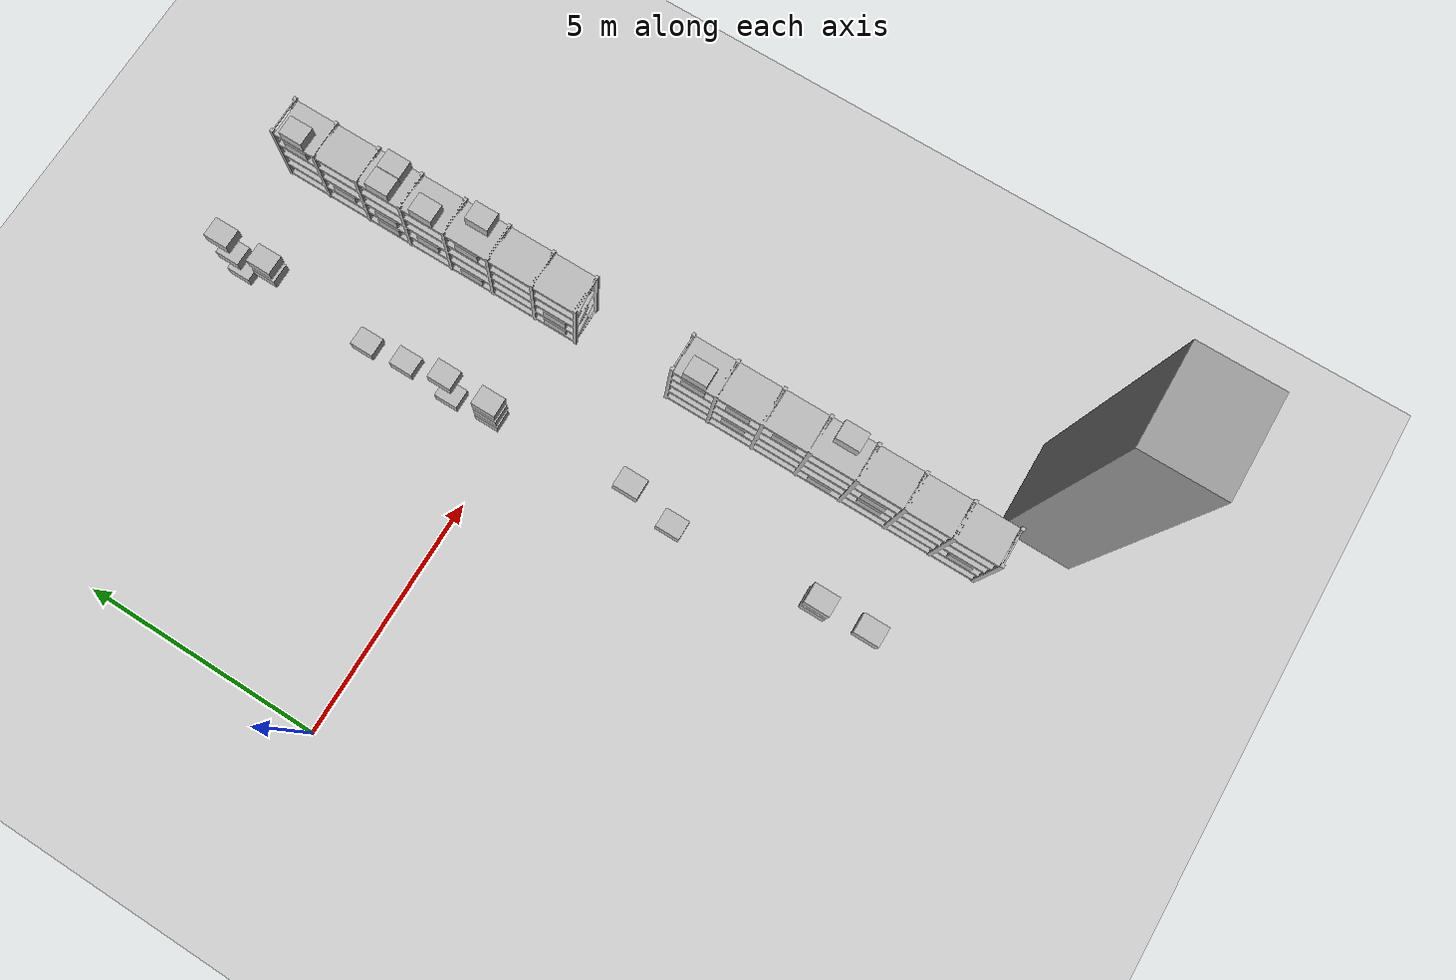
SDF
<sdf version="1.6">
 <world name="default">
  <model name="ground_plane">
   <static>1</static>
   <link name="link">
    <collision name="collision">
     <geometry><plane><normal>0 0 1</normal><size>100 100</size></plane></geometry>
     <surface><friction><ode><mu>100</mu><mu2>50</mu2></ode></friction></surface>
    </collision>
    <visual name="visual">
     <cast_shadows>0</cast_shadows>
     <geometry><plane><normal>0 0 1</normal><size>100 100</size></plane></geometry>
     <material>
      <script><uri>file://media/materials/scripts/gazebo.material</uri><name>Gazebo/Grey</name></script>
     </material>
    </visual>
   </link>
  </model>
  <model name="box_A_083">
   <pose>6.6649 -7.4906 2.052 0 0 0</pose>
   <link name="link">
    <inertial>
     <mass>2.0</mass>
     <inertia><ixx>0.05667</ixx><iyy>0.04167</iyy><izz>0.06833</izz><ixy>0</ixy><ixz>0</ixz><iyz>0</iyz></inertia>
    </inertial>
    <collision name="collision">
     <geometry><box><size>0.4 0.5 0.3</size></box></geometry>
     <surface><friction><ode><mu>1.0</mu><mu2>1.0</mu2></ode></friction></surface>
    </collision>
    <visual name="visual">
     <cast_shadows>0</cast_shadows>
     <geometry><box><size>0.4 0.5 0.3</size></box></geometry>
     <material>
      <script>
       <uri>model://labeled_boxes/materials/scripts</uri>
       <uri>model://labeled_boxes/materials/textures</uri>
       <name>LabeledBox/A-083</name>
      </script>
     </material>
    </visual>
   </link>
  </model>
  <model name="box_A_084">
   <pose>6.6649 -6.5191 1.602 0 0 0</pose>
   <link name="link">
    <inertial>
     <mass>2.0</mass>
     <inertia><ixx>0.05667</ixx><iyy>0.04167</iyy><izz>0.06833</izz><ixy>0</ixy><ixz>0</ixz><iyz>0</iyz></inertia>
    </inertial>
    <collision name="collision">
     <geometry><box><size>0.4 0.5 0.3</size></box></geometry>
     <surface><friction><ode><mu>1.0</mu><mu2>1.0</mu2></ode></friction></surface>
    </collision>
    <visual name="visual">
     <cast_shadows>0</cast_shadows>
     <geometry><box><size>0.4 0.5 0.3</size></box></geometry>
     <material>
      <script>
       <uri>model://labeled_boxes/materials/scripts</uri>
       <uri>model://labeled_boxes/materials/textures</uri>
       <name>LabeledBox/A-084</name>
      </script>
     </material>
    </visual>
   </link>
  </model>
  <model name="box_A_085">
   <pose>6.6649 -6.5191 2.052 0 0 0</pose>
   <link name="link">
    <inertial>
     <mass>2.0</mass>
     <inertia><ixx>0.05667</ixx><iyy>0.04167</iyy><izz>0.06833</izz><ixy>0</ixy><ixz>0</ixz><iyz>0</iyz></inertia>
    </inertial>
    <collision name="collision">
     <geometry><box><size>0.4 0.5 0.3</size></box></geometry>
     <surface><friction><ode><mu>1.0</mu><mu2>1.0</mu2></ode></friction></surface>
    </collision>
    <visual name="visual">
     <cast_shadows>0</cast_shadows>
     <geometry><box><size>0.4 0.5 0.3</size></box></geometry>
     <material>
      <script>
       <uri>model://labeled_boxes/materials/scripts</uri>
       <uri>model://labeled_boxes/materials/textures</uri>
       <name>LabeledBox/A-085</name>
      </script>
     </material>
    </visual>
   </link>
  </model>
  <model name="box_A_087">
   <pose>6.6649 -3.6049 0.702 0 0 0</pose>
   <link name="link">
    <inertial>
     <mass>2.0</mass>
     <inertia><ixx>0.05667</ixx><iyy>0.04167</iyy><izz>0.06833</izz><ixy>0</ixy><ixz>0</ixz><iyz>0</iyz></inertia>
    </inertial>
    <collision name="collision">
     <geometry><box><size>0.4 0.5 0.3</size></box></geometry>
     <surface><friction><ode><mu>1.0</mu><mu2>1.0</mu2></ode></friction></surface>
    </collision>
    <visual name="visual">
     <cast_shadows>0</cast_shadows>
     <geometry><box><size>0.4 0.5 0.3</size></box></geometry>
     <material>
      <script>
       <uri>model://labeled_boxes/materials/scripts</uri>
       <uri>model://labeled_boxes/materials/textures</uri>
       <name>LabeledBox/A-087</name>
      </script>
     </material>
    </visual>
   </link>
  </model>
  <model name="box_A_088">
   <pose>6.6649 -2.6509 2.052 0 0 0</pose>
   <link name="link">
    <inertial>
     <mass>2.0</mass>
     <inertia><ixx>0.05667</ixx><iyy>0.04167</iyy><izz>0.06833</izz><ixy>0</ixy><ixz>0</ixz><iyz>0</iyz></inertia>
    </inertial>
    <collision name="collision">
     <geometry><box><size>0.4 0.5 0.3</size></box></geometry>
     <surface><friction><ode><mu>1.0</mu><mu2>1.0</mu2></ode></friction></surface>
    </collision>
    <visual name="visual">
     <cast_shadows>0</cast_shadows>
     <geometry><box><size>0.4 0.5 0.3</size></box></geometry>
     <material>
      <script>
       <uri>model://labeled_boxes/materials/scripts</uri>
       <uri>model://labeled_boxes/materials/textures</uri>
       <name>LabeledBox/A-088</name>
      </script>
     </material>
    </visual>
   </link>
  </model>
  <model name="box_A_089">
   <pose>6.6649 0.3555 0.702 0 0 0</pose>
   <link name="link">
    <inertial>
     <mass>2.0</mass>
     <inertia><ixx>0.05667</ixx><iyy>0.04167</iyy><izz>0.06833</izz><ixy>0</ixy><ixz>0</ixz><iyz>0</iyz></inertia>
    </inertial>
    <collision name="collision">
     <geometry><box><size>0.4 0.5 0.3</size></box></geometry>
     <surface><friction><ode><mu>1.0</mu><mu2>1.0</mu2></ode></friction></surface>
    </collision>
    <visual name="visual">
     <cast_shadows>0</cast_shadows>
     <geometry><box><size>0.4 0.5 0.3</size></box></geometry>
     <material>
      <script>
       <uri>model://labeled_boxes/materials/scripts</uri>
       <uri>model://labeled_boxes/materials/textures</uri>
       <name>LabeledBox/A-089</name>
      </script>
     </material>
    </visual>
   </link>
  </model>
  <model name="box_A_091">
   <pose>6.6649 0.3555 1.152 0 0 0</pose>
   <link name="link">
    <inertial>
     <mass>2.0</mass>
     <inertia><ixx>0.05667</ixx><iyy>0.04167</iyy><izz>0.06833</izz><ixy>0</ixy><ixz>0</ixz><iyz>0</iyz></inertia>
    </inertial>
    <collision name="collision">
     <geometry><box><size>0.4 0.5 0.3</size></box></geometry>
     <surface><friction><ode><mu>1.0</mu><mu2>1.0</mu2></ode></friction></surface>
    </collision>
    <visual name="visual">
     <cast_shadows>0</cast_shadows>
     <geometry><box><size>0.4 0.5 0.3</size></box></geometry>
     <material>
      <script>
       <uri>model://labeled_boxes/materials/scripts</uri>
       <uri>model://labeled_boxes/materials/textures</uri>
       <name>LabeledBox/A-091</name>
      </script>
     </material>
    </visual>
   </link>
  </model>
  <model name="box_A_092">
   <pose>6.6649 0.3555 1.602 0 0 0</pose>
   <link name="link">
    <inertial>
     <mass>2.0</mass>
     <inertia><ixx>0.05667</ixx><iyy>0.04167</iyy><izz>0.06833</izz><ixy>0</ixy><ixz>0</ixz><iyz>0</iyz></inertia>
    </inertial>
    <collision name="collision">
     <geometry><box><size>0.4 0.5 0.3</size></box></geometry>
     <surface><friction><ode><mu>1.0</mu><mu2>1.0</mu2></ode></friction></surface>
    </collision>
    <visual name="visual">
     <cast_shadows>0</cast_shadows>
     <geometry><box><size>0.4 0.5 0.3</size></box></geometry>
     <material>
      <script>
       <uri>model://labeled_boxes/materials/scripts</uri>
       <uri>model://labeled_boxes/materials/textures</uri>
       <name>LabeledBox/A-092</name>
      </script>
     </material>
    </visual>
   </link>
  </model>
  <model name="box_A_093">
   <pose>6.6649 1.3094 0.252 0 0 0</pose>
   <link name="link">
    <inertial>
     <mass>2.0</mass>
     <inertia><ixx>0.05667</ixx><iyy>0.04167</iyy><izz>0.06833</izz><ixy>0</ixy><ixz>0</ixz><iyz>0</iyz></inertia>
    </inertial>
    <collision name="collision">
     <geometry><box><size>0.4 0.5 0.3</size></box></geometry>
     <surface><friction><ode><mu>1.0</mu><mu2>1.0</mu2></ode></friction></surface>
    </collision>
    <visual name="visual">
     <cast_shadows>0</cast_shadows>
     <geometry><box><size>0.4 0.5 0.3</size></box></geometry>
     <material>
      <script>
       <uri>model://labeled_boxes/materials/scripts</uri>
       <uri>model://labeled_boxes/materials/textures</uri>
       <name>LabeledBox/A-093</name>
      </script>
     </material>
    </visual>
   </link>
  </model>
  <model name="box_A_095">
   <pose>6.6649 1.3094 1.602 0 0 0</pose>
   <link name="link">
    <inertial>
     <mass>2.0</mass>
     <inertia><ixx>0.05667</ixx><iyy>0.04167</iyy><izz>0.06833</izz><ixy>0</ixy><ixz>0</ixz><iyz>0</iyz></inertia>
    </inertial>
    <collision name="collision">
     <geometry><box><size>0.4 0.5 0.3</size></box></geometry>
     <surface><friction><ode><mu>1.0</mu><mu2>1.0</mu2></ode></friction></surface>
    </collision>
    <visual name="visual">
     <cast_shadows>0</cast_shadows>
     <geometry><box><size>0.4 0.5 0.3</size></box></geometry>
     <material>
      <script>
       <uri>model://labeled_boxes/materials/scripts</uri>
       <uri>model://labeled_boxes/materials/textures</uri>
       <name>LabeledBox/A-095</name>
      </script>
     </material>
    </visual>
   </link>
  </model>
  <model name="box_A_096">
   <pose>6.6649 2.2809 0.702 0 0 0</pose>
   <link name="link">
    <inertial>
     <mass>2.0</mass>
     <inertia><ixx>0.05667</ixx><iyy>0.04167</iyy><izz>0.06833</izz><ixy>0</ixy><ixz>0</ixz><iyz>0</iyz></inertia>
    </inertial>
    <collision name="collision">
     <geometry><box><size>0.4 0.5 0.3</size></box></geometry>
     <surface><friction><ode><mu>1.0</mu><mu2>1.0</mu2></ode></friction></surface>
    </collision>
    <visual name="visual">
     <cast_shadows>0</cast_shadows>
     <geometry><box><size>0.4 0.5 0.3</size></box></geometry>
     <material>
      <script>
       <uri>model://labeled_boxes/materials/scripts</uri>
       <uri>model://labeled_boxes/materials/textures</uri>
       <name>LabeledBox/A-096</name>
      </script>
     </material>
    </visual>
   </link>
  </model>
  <model name="box_A_098">
   <pose>6.6649 3.2523 0.252 0 0 0</pose>
   <link name="link">
    <inertial>
     <mass>2.0</mass>
     <inertia><ixx>0.05667</ixx><iyy>0.04167</iyy><izz>0.06833</izz><ixy>0</ixy><ixz>0</ixz><iyz>0</iyz></inertia>
    </inertial>
    <collision name="collision">
     <geometry><box><size>0.4 0.5 0.3</size></box></geometry>
     <surface><friction><ode><mu>1.0</mu><mu2>1.0</mu2></ode></friction></surface>
    </collision>
    <visual name="visual">
     <cast_shadows>0</cast_shadows>
     <geometry><box><size>0.4 0.5 0.3</size></box></geometry>
     <material>
      <script>
       <uri>model://labeled_boxes/materials/scripts</uri>
       <uri>model://labeled_boxes/materials/textures</uri>
       <name>LabeledBox/A-098</name>
      </script>
     </material>
    </visual>
   </link>
  </model>
  <model name="box_A_103">
   <pose>6.6649 5.1951 1.602 0 0 0</pose>
   <link name="link">
    <inertial>
     <mass>2.0</mass>
     <inertia><ixx>0.05667</ixx><iyy>0.04167</iyy><izz>0.06833</izz><ixy>0</ixy><ixz>0</ixz><iyz>0</iyz></inertia>
    </inertial>
    <collision name="collision">
     <geometry><box><size>0.4 0.5 0.3</size></box></geometry>
     <surface><friction><ode><mu>1.0</mu><mu2>1.0</mu2></ode></friction></surface>
    </collision>
    <visual name="visual">
     <cast_shadows>0</cast_shadows>
     <geometry><box><size>0.4 0.5 0.3</size></box></geometry>
     <material>
      <script>
       <uri>model://labeled_boxes/materials/scripts</uri>
       <uri>model://labeled_boxes/materials/textures</uri>
       <name>LabeledBox/A-103</name>
      </script>
     </material>
    </visual>
   </link>
  </model>
  <model name="box_A_104">
   <pose>6.6649 5.1951 2.052 0 0 0</pose>
   <link name="link">
    <inertial>
     <mass>2.0</mass>
     <inertia><ixx>0.05667</ixx><iyy>0.04167</iyy><izz>0.06833</izz><ixy>0</ixy><ixz>0</ixz><iyz>0</iyz></inertia>
    </inertial>
    <collision name="collision">
     <geometry><box><size>0.4 0.5 0.3</size></box></geometry>
     <surface><friction><ode><mu>1.0</mu><mu2>1.0</mu2></ode></friction></surface>
    </collision>
    <visual name="visual">
     <cast_shadows>0</cast_shadows>
     <geometry><box><size>0.4 0.5 0.3</size></box></geometry>
     <material>
      <script>
       <uri>model://labeled_boxes/materials/scripts</uri>
       <uri>model://labeled_boxes/materials/textures</uri>
       <name>LabeledBox/A-104</name>
      </script>
     </material>
    </visual>
   </link>
  </model>
  <model name="box_A_105">
   <pose>6.6649 6.1491 0.252 0 0 0</pose>
   <link name="link">
    <inertial>
     <mass>2.0</mass>
     <inertia><ixx>0.05667</ixx><iyy>0.04167</iyy><izz>0.06833</izz><ixy>0</ixy><ixz>0</ixz><iyz>0</iyz></inertia>
    </inertial>
    <collision name="collision">
     <geometry><box><size>0.4 0.5 0.3</size></box></geometry>
     <surface><friction><ode><mu>1.0</mu><mu2>1.0</mu2></ode></friction></surface>
    </collision>
    <visual name="visual">
     <cast_shadows>0</cast_shadows>
     <geometry><box><size>0.4 0.5 0.3</size></box></geometry>
     <material>
      <script>
       <uri>model://labeled_boxes/materials/scripts</uri>
       <uri>model://labeled_boxes/materials/textures</uri>
       <name>LabeledBox/A-105</name>
      </script>
     </material>
    </visual>
   </link>
  </model>
  <model name="box_A_108">
   <pose>6.6649 6.1491 1.152 0 0 0</pose>
   <link name="link">
    <inertial>
     <mass>2.0</mass>
     <inertia><ixx>0.05667</ixx><iyy>0.04167</iyy><izz>0.06833</izz><ixy>0</ixy><ixz>0</ixz><iyz>0</iyz></inertia>
    </inertial>
    <collision name="collision">
     <geometry><box><size>0.4 0.5 0.3</size></box></geometry>
     <surface><friction><ode><mu>1.0</mu><mu2>1.0</mu2></ode></friction></surface>
    </collision>
    <visual name="visual">
     <cast_shadows>0</cast_shadows>
     <geometry><box><size>0.4 0.5 0.3</size></box></geometry>
     <material>
      <script>
       <uri>model://labeled_boxes/materials/scripts</uri>
       <uri>model://labeled_boxes/materials/textures</uri>
       <name>LabeledBox/A-108</name>
      </script>
     </material>
    </visual>
   </link>
  </model>
  <model name="box_A_110">
   <pose>6.6649 6.1491 2.052 0 0 0</pose>
   <link name="link">
    <inertial>
     <mass>2.0</mass>
     <inertia><ixx>0.05667</ixx><iyy>0.04167</iyy><izz>0.06833</izz><ixy>0</ixy><ixz>0</ixz><iyz>0</iyz></inertia>
    </inertial>
    <collision name="collision">
     <geometry><box><size>0.4 0.5 0.3</size></box></geometry>
     <surface><friction><ode><mu>1.0</mu><mu2>1.0</mu2></ode></friction></surface>
    </collision>
    <visual name="visual">
     <cast_shadows>0</cast_shadows>
     <geometry><box><size>0.4 0.5 0.3</size></box></geometry>
     <material>
      <script>
       <uri>model://labeled_boxes/materials/scripts</uri>
       <uri>model://labeled_boxes/materials/textures</uri>
       <name>LabeledBox/A-110</name>
      </script>
     </material>
    </visual>
   </link>
  </model>
  <include>
   <name>rack_A5_0</name>
   <uri>model://warehouse_rack_5lvl_7bay</uri>
   <pose>9.2599 -5.5477 0 0 0 0</pose>
  </include>
  <model name="box_A_111">
   <pose>9.0549 -8.4445 0.702 0 0 0</pose>
   <link name="link">
    <inertial>
     <mass>2.0</mass>
     <inertia><ixx>0.05667</ixx><iyy>0.04167</iyy><izz>0.06833</izz><ixy>0</ixy><ixz>0</ixz><iyz>0</iyz></inertia>
    </inertial>
    <collision name="collision">
     <geometry><box><size>0.4 0.5 0.3</size></box></geometry>
     <surface><friction><ode><mu>1.0</mu><mu2>1.0</mu2></ode></friction></surface>
    </collision>
    <visual name="visual">
     <cast_shadows>0</cast_shadows>
     <geometry><box><size>0.4 0.5 0.3</size></box></geometry>
     <material>
      <script>
       <uri>model://labeled_boxes/materials/scripts</uri>
       <uri>model://labeled_boxes/materials/textures</uri>
       <name>LabeledBox/A-111</name>
      </script>
     </material>
    </visual>
   </link>
  </model>
  <model name="box_A_112">
   <pose>9.4649 -8.4445 0.702 0 0 0</pose>
   <link name="link">
    <inertial>
     <mass>2.0</mass>
     <inertia><ixx>0.05667</ixx><iyy>0.04167</iyy><izz>0.06833</izz><ixy>0</ixy><ixz>0</ixz><iyz>0</iyz></inertia>
    </inertial>
    <collision name="collision">
     <geometry><box><size>0.4 0.5 0.3</size></box></geometry>
     <surface><friction><ode><mu>1.0</mu><mu2>1.0</mu2></ode></friction></surface>
    </collision>
    <visual name="visual">
     <cast_shadows>0</cast_shadows>
     <geometry><box><size>0.4 0.5 0.3</size></box></geometry>
     <material>
      <script>
       <uri>model://labeled_boxes/materials/scripts</uri>
       <uri>model://labeled_boxes/materials/textures</uri>
       <name>LabeledBox/A-112</name>
      </script>
     </material>
    </visual>
   </link>
  </model>
  <model name="box_A_113">
   <pose>9.0549 -6.5191 0.702 0 0 0</pose>
   <link name="link">
    <inertial>
     <mass>2.0</mass>
     <inertia><ixx>0.05667</ixx><iyy>0.04167</iyy><izz>0.06833</izz><ixy>0</ixy><ixz>0</ixz><iyz>0</iyz></inertia>
    </inertial>
    <collision name="collision">
     <geometry><box><size>0.4 0.5 0.3</size></box></geometry>
     <surface><friction><ode><mu>1.0</mu><mu2>1.0</mu2></ode></friction></surface>
    </collision>
    <visual name="visual">
     <cast_shadows>0</cast_shadows>
     <geometry><box><size>0.4 0.5 0.3</size></box></geometry>
     <material>
      <script>
       <uri>model://labeled_boxes/materials/scripts</uri>
       <uri>model://labeled_boxes/materials/textures</uri>
       <name>LabeledBox/A-113</name>
      </script>
     </material>
    </visual>
   </link>
  </model>
  <model name="box_A_114">
   <pose>9.0549 -6.5191 1.152 0 0 0</pose>
   <link name="link">
    <inertial>
     <mass>2.0</mass>
     <inertia><ixx>0.05667</ixx><iyy>0.04167</iyy><izz>0.06833</izz><ixy>0</ixy><ixz>0</ixz><iyz>0</iyz></inertia>
    </inertial>
    <collision name="collision">
     <geometry><box><size>0.4 0.5 0.3</size></box></geometry>
     <surface><friction><ode><mu>1.0</mu><mu2>1.0</mu2></ode></friction></surface>
    </collision>
    <visual name="visual">
     <cast_shadows>0</cast_shadows>
     <geometry><box><size>0.4 0.5 0.3</size></box></geometry>
     <material>
      <script>
       <uri>model://labeled_boxes/materials/scripts</uri>
       <uri>model://labeled_boxes/materials/textures</uri>
       <name>LabeledBox/A-114</name>
      </script>
     </material>
    </visual>
   </link>
  </model>
  <model name="box_A_115">
   <pose>9.0549 -5.5477 0.252 0 0 0</pose>
   <link name="link">
    <inertial>
     <mass>2.0</mass>
     <inertia><ixx>0.05667</ixx><iyy>0.04167</iyy><izz>0.06833</izz><ixy>0</ixy><ixz>0</ixz><iyz>0</iyz></inertia>
    </inertial>
    <collision name="collision">
     <geometry><box><size>0.4 0.5 0.3</size></box></geometry>
     <surface><friction><ode><mu>1.0</mu><mu2>1.0</mu2></ode></friction></surface>
    </collision>
    <visual name="visual">
     <cast_shadows>0</cast_shadows>
     <geometry><box><size>0.4 0.5 0.3</size></box></geometry>
     <material>
      <script>
       <uri>model://labeled_boxes/materials/scripts</uri>
       <uri>model://labeled_boxes/materials/textures</uri>
       <name>LabeledBox/A-115</name>
      </script>
     </material>
    </visual>
   </link>
  </model>
  <model name="box_A_116">
   <pose>9.4649 -5.5477 2.052 0 0 0</pose>
   <link name="link">
    <inertial>
     <mass>2.0</mass>
     <inertia><ixx>0.05667</ixx><iyy>0.04167</iyy><izz>0.06833</izz><ixy>0</ixy><ixz>0</ixz><iyz>0</iyz></inertia>
    </inertial>
    <collision name="collision">
     <geometry><box><size>0.4 0.5 0.3</size></box></geometry>
     <surface><friction><ode><mu>1.0</mu><mu2>1.0</mu2></ode></friction></surface>
    </collision>
    <visual name="visual">
     <cast_shadows>0</cast_shadows>
     <geometry><box><size>0.4 0.5 0.3</size></box></geometry>
     <material>
      <script>
       <uri>model://labeled_boxes/materials/scripts</uri>
       <uri>model://labeled_boxes/materials/textures</uri>
       <name>LabeledBox/A-116</name>
      </script>
     </material>
    </visual>
   </link>
  </model>
  <model name="box_A_117">
   <pose>9.4649 -4.5763 0.252 0 0 0</pose>
   <link name="link">
    <inertial>
     <mass>2.0</mass>
     <inertia><ixx>0.05667</ixx><iyy>0.04167</iyy><izz>0.06833</izz><ixy>0</ixy><ixz>0</ixz><iyz>0</iyz></inertia>
    </inertial>
    <collision name="collision">
     <geometry><box><size>0.4 0.5 0.3</size></box></geometry>
     <surface><friction><ode><mu>1.0</mu><mu2>1.0</mu2></ode></friction></surface>
    </collision>
    <visual name="visual">
     <cast_shadows>0</cast_shadows>
     <geometry><box><size>0.4 0.5 0.3</size></box></geometry>
     <material>
      <script>
       <uri>model://labeled_boxes/materials/scripts</uri>
       <uri>model://labeled_boxes/materials/textures</uri>
       <name>LabeledBox/A-117</name>
      </script>
     </material>
    </visual>
   </link>
  </model>
  <model name="box_A_118">
   <pose>9.0549 -4.5763 1.602 0 0 0</pose>
   <link name="link">
    <inertial>
     <mass>2.0</mass>
     <inertia><ixx>0.05667</ixx><iyy>0.04167</iyy><izz>0.06833</izz><ixy>0</ixy><ixz>0</ixz><iyz>0</iyz></inertia>
    </inertial>
    <collision name="collision">
     <geometry><box><size>0.4 0.5 0.3</size></box></geometry>
     <surface><friction><ode><mu>1.0</mu><mu2>1.0</mu2></ode></friction></surface>
    </collision>
    <visual name="visual">
     <cast_shadows>0</cast_shadows>
     <geometry><box><size>0.4 0.5 0.3</size></box></geometry>
     <material>
      <script>
       <uri>model://labeled_boxes/materials/scripts</uri>
       <uri>model://labeled_boxes/materials/textures</uri>
       <name>LabeledBox/A-118</name>
      </script>
     </material>
    </visual>
   </link>
  </model>
  <model name="box_A_119">
   <pose>9.0549 -3.6049 0.702 0 0 0</pose>
   <link name="link">
    <inertial>
     <mass>2.0</mass>
     <inertia><ixx>0.05667</ixx><iyy>0.04167</iyy><izz>0.06833</izz><ixy>0</ixy><ixz>0</ixz><iyz>0</iyz></inertia>
    </inertial>
    <collision name="collision">
     <geometry><box><size>0.4 0.5 0.3</size></box></geometry>
     <surface><friction><ode><mu>1.0</mu><mu2>1.0</mu2></ode></friction></surface>
    </collision>
    <visual name="visual">
     <cast_shadows>0</cast_shadows>
     <geometry><box><size>0.4 0.5 0.3</size></box></geometry>
     <material>
      <script>
       <uri>model://labeled_boxes/materials/scripts</uri>
       <uri>model://labeled_boxes/materials/textures</uri>
       <name>LabeledBox/A-119</name>
      </script>
     </material>
    </visual>
   </link>
  </model>
  <model name="box_A_120">
   <pose>9.4649 -3.6049 1.152 0 0 0</pose>
   <link name="link">
    <inertial>
     <mass>2.0</mass>
     <inertia><ixx>0.05667</ixx><iyy>0.04167</iyy><izz>0.06833</izz><ixy>0</ixy><ixz>0</ixz><iyz>0</iyz></inertia>
    </inertial>
    <collision name="collision">
     <geometry><box><size>0.4 0.5 0.3</size></box></geometry>
     <surface><friction><ode><mu>1.0</mu><mu2>1.0</mu2></ode></friction></surface>
    </collision>
    <visual name="visual">
     <cast_shadows>0</cast_shadows>
     <geometry><box><size>0.4 0.5 0.3</size></box></geometry>
     <material>
      <script>
       <uri>model://labeled_boxes/materials/scripts</uri>
       <uri>model://labeled_boxes/materials/textures</uri>
       <name>LabeledBox/A-120</name>
      </script>
     </material>
    </visual>
   </link>
  </model>
  <model name="box_A_121">
   <pose>9.0549 -3.6049 1.602 0 0 0</pose>
   <link name="link">
    <inertial>
     <mass>2.0</mass>
     <inertia><ixx>0.05667</ixx><iyy>0.04167</iyy><izz>0.06833</izz><ixy>0</ixy><ixz>0</ixz><iyz>0</iyz></inertia>
    </inertial>
    <collision name="collision">
     <geometry><box><size>0.4 0.5 0.3</size></box></geometry>
     <surface><friction><ode><mu>1.0</mu><mu2>1.0</mu2></ode></friction></surface>
    </collision>
    <visual name="visual">
     <cast_shadows>0</cast_shadows>
     <geometry><box><size>0.4 0.5 0.3</size></box></geometry>
     <material>
      <script>
       <uri>model://labeled_boxes/materials/scripts</uri>
       <uri>model://labeled_boxes/materials/textures</uri>
       <name>LabeledBox/A-121</name>
      </script>
     </material>
    </visual>
   </link>
  </model>
  <model name="box_A_122">
   <pose>9.4649 -3.6049 1.602 0 0 0</pose>
   <link name="link">
    <inertial>
     <mass>2.0</mass>
     <inertia><ixx>0.05667</ixx><iyy>0.04167</iyy><izz>0.06833</izz><ixy>0</ixy><ixz>0</ixz><iyz>0</iyz></inertia>
    </inertial>
    <collision name="collision">
     <geometry><box><size>0.4 0.5 0.3</size></box></geometry>
     <surface><friction><ode><mu>1.0</mu><mu2>1.0</mu2></ode></friction></surface>
    </collision>
    <visual name="visual">
     <cast_shadows>0</cast_shadows>
     <geometry><box><size>0.4 0.5 0.3</size></box></geometry>
     <material>
      <script>
       <uri>model://labeled_boxes/materials/scripts</uri>
       <uri>model://labeled_boxes/materials/textures</uri>
       <name>LabeledBox/A-122</name>
      </script>
     </material>
    </visual>
   </link>
  </model>
  <model name="box_A_123">
   <pose>9.4649 -2.6509 0.252 0 0 0</pose>
   <link name="link">
    <inertial>
     <mass>2.0</mass>
     <inertia><ixx>0.05667</ixx><iyy>0.04167</iyy><izz>0.06833</izz><ixy>0</ixy><ixz>0</ixz><iyz>0</iyz></inertia>
    </inertial>
    <collision name="collision">
     <geometry><box><size>0.4 0.5 0.3</size></box></geometry>
     <surface><friction><ode><mu>1.0</mu><mu2>1.0</mu2></ode></friction></surface>
    </collision>
    <visual name="visual">
     <cast_shadows>0</cast_shadows>
     <geometry><box><size>0.4 0.5 0.3</size></box></geometry>
     <material>
      <script>
       <uri>model://labeled_boxes/materials/scripts</uri>
       <uri>model://labeled_boxes/materials/textures</uri>
       <name>LabeledBox/A-123</name>
      </script>
     </material>
    </visual>
   </link>
  </model>
  <model name="box_A_124">
   <pose>9.4649 -2.6509 1.152 0 0 0</pose>
   <link name="link">
    <inertial>
     <mass>2.0</mass>
     <inertia><ixx>0.05667</ixx><iyy>0.04167</iyy><izz>0.06833</izz><ixy>0</ixy><ixz>0</ixz><iyz>0</iyz></inertia>
    </inertial>
    <collision name="collision">
     <geometry><box><size>0.4 0.5 0.3</size></box></geometry>
     <surface><friction><ode><mu>1.0</mu><mu2>1.0</mu2></ode></friction></surface>
    </collision>
    <visual name="visual">
     <cast_shadows>0</cast_shadows>
     <geometry><box><size>0.4 0.5 0.3</size></box></geometry>
     <material>
      <script>
       <uri>model://labeled_boxes/materials/scripts</uri>
       <uri>model://labeled_boxes/materials/textures</uri>
       <name>LabeledBox/A-124</name>
      </script>
     </material>
    </visual>
   </link>
  </model>
  <model name="box_A_125">
   <pose>9.0549 -2.6509 1.602 0 0 0</pose>
   <link name="link">
    <inertial>
     <mass>2.0</mass>
     <inertia><ixx>0.05667</ixx><iyy>0.04167</iyy><izz>0.06833</izz><ixy>0</ixy><ixz>0</ixz><iyz>0</iyz></inertia>
    </inertial>
    <collision name="collision">
     <geometry><box><size>0.4 0.5 0.3</size></box></geometry>
     <surface><friction><ode><mu>1.0</mu><mu2>1.0</mu2></ode></friction></surface>
    </collision>
    <visual name="visual">
     <cast_shadows>0</cast_shadows>
     <geometry><box><size>0.4 0.5 0.3</size></box></geometry>
     <material>
      <script>
       <uri>model://labeled_boxes/materials/scripts</uri>
       <uri>model://labeled_boxes/materials/textures</uri>
       <name>LabeledBox/A-125</name>
      </script>
     </material>
    </visual>
   </link>
  </model>
  <model name="box_A_126">
   <pose>9.0549 -2.6509 2.052 0 0 0</pose>
   <link name="link">
    <inertial>
     <mass>2.0</mass>
     <inertia><ixx>0.05667</ixx><iyy>0.04167</iyy><izz>0.06833</izz><ixy>0</ixy><ixz>0</ixz><iyz>0</iyz></inertia>
    </inertial>
    <collision name="collision">
     <geometry><box><size>0.4 0.5 0.3</size></box></geometry>
     <surface><friction><ode><mu>1.0</mu><mu2>1.0</mu2></ode></friction></surface>
    </collision>
    <visual name="visual">
     <cast_shadows>0</cast_shadows>
     <geometry><box><size>0.4 0.5 0.3</size></box></geometry>
     <material>
      <script>
       <uri>model://labeled_boxes/materials/scripts</uri>
       <uri>model://labeled_boxes/materials/textures</uri>
       <name>LabeledBox/A-126</name>
      </script>
     </material>
    </visual>
   </link>
  </model>
  <include>
   <name>rack_A5_1</name>
   <uri>model://warehouse_rack_5lvl_7bay</uri>
   <pose>9.2599 3.2523 0 0 0 0</pose>
  </include>
  <model name="box_A_127">
   <pose>9.0549 0.3555 0.252 0 0 0</pose>
   <link name="link">
    <inertial>
     <mass>2.0</mass>
     <inertia><ixx>0.05667</ixx><iyy>0.04167</iyy><izz>0.06833</izz><ixy>0</ixy><ixz>0</ixz><iyz>0</iyz></inertia>
    </inertial>
    <collision name="collision">
     <geometry><box><size>0.4 0.5 0.3</size></box></geometry>
     <surface><friction><ode><mu>1.0</mu><mu2>1.0</mu2></ode></friction></surface>
    </collision>
    <visual name="visual">
     <cast_shadows>0</cast_shadows>
     <geometry><box><size>0.4 0.5 0.3</size></box></geometry>
     <material>
      <script>
       <uri>model://labeled_boxes/materials/scripts</uri>
       <uri>model://labeled_boxes/materials/textures</uri>
       <name>LabeledBox/A-127</name>
      </script>
     </material>
    </visual>
   </link>
  </model>
  <model name="box_A_128">
   <pose>9.0549 0.3555 0.702 0 0 0</pose>
   <link name="link">
    <inertial>
     <mass>2.0</mass>
     <inertia><ixx>0.05667</ixx><iyy>0.04167</iyy><izz>0.06833</izz><ixy>0</ixy><ixz>0</ixz><iyz>0</iyz></inertia>
    </inertial>
    <collision name="collision">
     <geometry><box><size>0.4 0.5 0.3</size></box></geometry>
     <surface><friction><ode><mu>1.0</mu><mu2>1.0</mu2></ode></friction></surface>
    </collision>
    <visual name="visual">
     <cast_shadows>0</cast_shadows>
     <geometry><box><size>0.4 0.5 0.3</size></box></geometry>
     <material>
      <script>
       <uri>model://labeled_boxes/materials/scripts</uri>
       <uri>model://labeled_boxes/materials/textures</uri>
       <name>LabeledBox/A-128</name>
      </script>
     </material>
    </visual>
   </link>
  </model>
  <model name="box_A_129">
   <pose>9.4649 0.3555 1.152 0 0 0</pose>
   <link name="link">
    <inertial>
     <mass>2.0</mass>
     <inertia><ixx>0.05667</ixx><iyy>0.04167</iyy><izz>0.06833</izz><ixy>0</ixy><ixz>0</ixz><iyz>0</iyz></inertia>
    </inertial>
    <collision name="collision">
     <geometry><box><size>0.4 0.5 0.3</size></box></geometry>
     <surface><friction><ode><mu>1.0</mu><mu2>1.0</mu2></ode></friction></surface>
    </collision>
    <visual name="visual">
     <cast_shadows>0</cast_shadows>
     <geometry><box><size>0.4 0.5 0.3</size></box></geometry>
     <material>
      <script>
       <uri>model://labeled_boxes/materials/scripts</uri>
       <uri>model://labeled_boxes/materials/textures</uri>
       <name>LabeledBox/A-129</name>
      </script>
     </material>
    </visual>
   </link>
  </model>
  <model name="box_A_130">
   <pose>9.0549 2.2809 0.252 0 0 0</pose>
   <link name="link">
    <inertial>
     <mass>2.0</mass>
     <inertia><ixx>0.05667</ixx><iyy>0.04167</iyy><izz>0.06833</izz><ixy>0</ixy><ixz>0</ixz><iyz>0</iyz></inertia>
    </inertial>
    <collision name="collision">
     <geometry><box><size>0.4 0.5 0.3</size></box></geometry>
     <surface><friction><ode><mu>1.0</mu><mu2>1.0</mu2></ode></friction></surface>
    </collision>
    <visual name="visual">
     <cast_shadows>0</cast_shadows>
     <geometry><box><size>0.4 0.5 0.3</size></box></geometry>
     <material>
      <script>
       <uri>model://labeled_boxes/materials/scripts</uri>
       <uri>model://labeled_boxes/materials/textures</uri>
       <name>LabeledBox/A-130</name>
      </script>
     </material>
    </visual>
   </link>
  </model>
  <model name="box_A_131">
   <pose>9.0549 2.2809 1.602 0 0 0</pose>
   <link name="link">
    <inertial>
     <mass>2.0</mass>
     <inertia><ixx>0.05667</ixx><iyy>0.04167</iyy><izz>0.06833</izz><ixy>0</ixy><ixz>0</ixz><iyz>0</iyz></inertia>
    </inertial>
    <collision name="collision">
     <geometry><box><size>0.4 0.5 0.3</size></box></geometry>
     <surface><friction><ode><mu>1.0</mu><mu2>1.0</mu2></ode></friction></surface>
    </collision>
    <visual name="visual">
     <cast_shadows>0</cast_shadows>
     <geometry><box><size>0.4 0.5 0.3</size></box></geometry>
     <material>
      <script>
       <uri>model://labeled_boxes/materials/scripts</uri>
       <uri>model://labeled_boxes/materials/textures</uri>
       <name>LabeledBox/A-131</name>
      </script>
     </material>
    </visual>
   </link>
  </model>
  <model name="box_A_132">
   <pose>9.4649 2.2809 2.052 0 0 0</pose>
   <link name="link">
    <inertial>
     <mass>2.0</mass>
     <inertia><ixx>0.05667</ixx><iyy>0.04167</iyy><izz>0.06833</izz><ixy>0</ixy><ixz>0</ixz><iyz>0</iyz></inertia>
    </inertial>
    <collision name="collision">
     <geometry><box><size>0.4 0.5 0.3</size></box></geometry>
     <surface><friction><ode><mu>1.0</mu><mu2>1.0</mu2></ode></friction></surface>
    </collision>
    <visual name="visual">
     <cast_shadows>0</cast_shadows>
     <geometry><box><size>0.4 0.5 0.3</size></box></geometry>
     <material>
      <script>
       <uri>model://labeled_boxes/materials/scripts</uri>
       <uri>model://labeled_boxes/materials/textures</uri>
       <name>LabeledBox/A-132</name>
      </script>
     </material>
    </visual>
   </link>
  </model>
  <model name="box_A_133">
   <pose>9.0549 3.2523 0.702 0 0 0</pose>
   <link name="link">
    <inertial>
     <mass>2.0</mass>
     <inertia><ixx>0.05667</ixx><iyy>0.04167</iyy><izz>0.06833</izz><ixy>0</ixy><ixz>0</ixz><iyz>0</iyz></inertia>
    </inertial>
    <collision name="collision">
     <geometry><box><size>0.4 0.5 0.3</size></box></geometry>
     <surface><friction><ode><mu>1.0</mu><mu2>1.0</mu2></ode></friction></surface>
    </collision>
    <visual name="visual">
     <cast_shadows>0</cast_shadows>
     <geometry><box><size>0.4 0.5 0.3</size></box></geometry>
     <material>
      <script>
       <uri>model://labeled_boxes/materials/scripts</uri>
       <uri>model://labeled_boxes/materials/textures</uri>
       <name>LabeledBox/A-133</name>
      </script>
     </material>
    </visual>
   </link>
  </model>
  <model name="box_A_134">
   <pose>9.4649 3.2523 0.702 0 0 0</pose>
   <link name="link">
    <inertial>
     <mass>2.0</mass>
     <inertia><ixx>0.05667</ixx><iyy>0.04167</iyy><izz>0.06833</izz><ixy>0</ixy><ixz>0</ixz><iyz>0</iyz></inertia>
    </inertial>
    <collision name="collision">
     <geometry><box><size>0.4 0.5 0.3</size></box></geometry>
     <surface><friction><ode><mu>1.0</mu><mu2>1.0</mu2></ode></friction></surface>
    </collision>
    <visual name="visual">
     <cast_shadows>0</cast_shadows>
     <geometry><box><size>0.4 0.5 0.3</size></box></geometry>
     <material>
      <script>
       <uri>model://labeled_boxes/materials/scripts</uri>
       <uri>model://labeled_boxes/materials/textures</uri>
       <name>LabeledBox/A-134</name>
      </script>
     </material>
    </visual>
   </link>
  </model>
  <model name="box_A_135">
   <pose>9.4649 3.2523 1.152 0 0 0</pose>
   <link name="link">
    <inertial>
     <mass>2.0</mass>
     <inertia><ixx>0.05667</ixx><iyy>0.04167</iyy><izz>0.06833</izz><ixy>0</ixy><ixz>0</ixz><iyz>0</iyz></inertia>
    </inertial>
    <collision name="collision">
     <geometry><box><size>0.4 0.5 0.3</size></box></geometry>
     <surface><friction><ode><mu>1.0</mu><mu2>1.0</mu2></ode></friction></surface>
    </collision>
    <visual name="visual">
     <cast_shadows>0</cast_shadows>
     <geometry><box><size>0.4 0.5 0.3</size></box></geometry>
     <material>
      <script>
       <uri>model://labeled_boxes/materials/scripts</uri>
       <uri>model://labeled_boxes/materials/textures</uri>
       <name>LabeledBox/A-135</name>
      </script>
     </material>
    </visual>
   </link>
  </model>
  <model name="box_A_136">
   <pose>9.4649 3.2523 1.602 0 0 0</pose>
   <link name="link">
    <inertial>
     <mass>2.0</mass>
     <inertia><ixx>0.05667</ixx><iyy>0.04167</iyy><izz>0.06833</izz><ixy>0</ixy><ixz>0</ixz><iyz>0</iyz></inertia>
    </inertial>
    <collision name="collision">
     <geometry><box><size>0.4 0.5 0.3</size></box></geometry>
     <surface><friction><ode><mu>1.0</mu><mu2>1.0</mu2></ode></friction></surface>
    </collision>
    <visual name="visual">
     <cast_shadows>0</cast_shadows>
     <geometry><box><size>0.4 0.5 0.3</size></box></geometry>
     <material>
      <script>
       <uri>model://labeled_boxes/materials/scripts</uri>
       <uri>model://labeled_boxes/materials/textures</uri>
       <name>LabeledBox/A-136</name>
      </script>
     </material>
    </visual>
   </link>
  </model>
  <model name="box_A_137">
   <pose>9.0549 3.2523 2.052 0 0 0</pose>
   <link name="link">
    <inertial>
     <mass>2.0</mass>
     <inertia><ixx>0.05667</ixx><iyy>0.04167</iyy><izz>0.06833</izz><ixy>0</ixy><ixz>0</ixz><iyz>0</iyz></inertia>
    </inertial>
    <collision name="collision">
     <geometry><box><size>0.4 0.5 0.3</size></box></geometry>
     <surface><friction><ode><mu>1.0</mu><mu2>1.0</mu2></ode></friction></surface>
    </collision>
    <visual name="visual">
     <cast_shadows>0</cast_shadows>
     <geometry><box><size>0.4 0.5 0.3</size></box></geometry>
     <material>
      <script>
       <uri>model://labeled_boxes/materials/scripts</uri>
       <uri>model://labeled_boxes/materials/textures</uri>
       <name>LabeledBox/A-137</name>
      </script>
     </material>
    </visual>
   </link>
  </model>
  <model name="box_A_138">
   <pose>9.0549 4.2237 0.252 0 0 0</pose>
   <link name="link">
    <inertial>
     <mass>2.0</mass>
     <inertia><ixx>0.05667</ixx><iyy>0.04167</iyy><izz>0.06833</izz><ixy>0</ixy><ixz>0</ixz><iyz>0</iyz></inertia>
    </inertial>
    <collision name="collision">
     <geometry><box><size>0.4 0.5 0.3</size></box></geometry>
     <surface><friction><ode><mu>1.0</mu><mu2>1.0</mu2></ode></friction></surface>
    </collision>
    <visual name="visual">
     <cast_shadows>0</cast_shadows>
     <geometry><box><size>0.4 0.5 0.3</size></box></geometry>
     <material>
      <script>
       <uri>model://labeled_boxes/materials/scripts</uri>
       <uri>model://labeled_boxes/materials/textures</uri>
       <name>LabeledBox/A-138</name>
      </script>
     </material>
    </visual>
   </link>
  </model>
  <model name="box_A_139">
   <pose>9.0549 4.2237 0.702 0 0 0</pose>
   <link name="link">
    <inertial>
     <mass>2.0</mass>
     <inertia><ixx>0.05667</ixx><iyy>0.04167</iyy><izz>0.06833</izz><ixy>0</ixy><ixz>0</ixz><iyz>0</iyz></inertia>
    </inertial>
    <collision name="collision">
     <geometry><box><size>0.4 0.5 0.3</size></box></geometry>
     <surface><friction><ode><mu>1.0</mu><mu2>1.0</mu2></ode></friction></surface>
    </collision>
    <visual name="visual">
     <cast_shadows>0</cast_shadows>
     <geometry><box><size>0.4 0.5 0.3</size></box></geometry>
     <material>
      <script>
       <uri>model://labeled_boxes/materials/scripts</uri>
       <uri>model://labeled_boxes/materials/textures</uri>
       <name>LabeledBox/A-139</name>
      </script>
     </material>
    </visual>
   </link>
  </model>
  <model name="box_A_140">
   <pose>9.0549 4.2237 2.052 0 0 0</pose>
   <link name="link">
    <inertial>
     <mass>2.0</mass>
     <inertia><ixx>0.05667</ixx><iyy>0.04167</iyy><izz>0.06833</izz><ixy>0</ixy><ixz>0</ixz><iyz>0</iyz></inertia>
    </inertial>
    <collision name="collision">
     <geometry><box><size>0.4 0.5 0.3</size></box></geometry>
     <surface><friction><ode><mu>1.0</mu><mu2>1.0</mu2></ode></friction></surface>
    </collision>
    <visual name="visual">
     <cast_shadows>0</cast_shadows>
     <geometry><box><size>0.4 0.5 0.3</size></box></geometry>
     <material>
      <script>
       <uri>model://labeled_boxes/materials/scripts</uri>
       <uri>model://labeled_boxes/materials/textures</uri>
       <name>LabeledBox/A-140</name>
      </script>
     </material>
    </visual>
   </link>
  </model>
  <model name="box_A_141">
   <pose>9.4649 4.2237 2.052 0 0 0</pose>
   <link name="link">
    <inertial>
     <mass>2.0</mass>
     <inertia><ixx>0.05667</ixx><iyy>0.04167</iyy><izz>0.06833</izz><ixy>0</ixy><ixz>0</ixz><iyz>0</iyz></inertia>
    </inertial>
    <collision name="collision">
     <geometry><box><size>0.4 0.5 0.3</size></box></geometry>
     <surface><friction><ode><mu>1.0</mu><mu2>1.0</mu2></ode></friction></surface>
    </collision>
    <visual name="visual">
     <cast_shadows>0</cast_shadows>
     <geometry><box><size>0.4 0.5 0.3</size></box></geometry>
     <material>
      <script>
       <uri>model://labeled_boxes/materials/scripts</uri>
       <uri>model://labeled_boxes/materials/textures</uri>
       <name>LabeledBox/A-141</name>
      </script>
     </material>
    </visual>
   </link>
  </model>
  <model name="box_A_142">
   <pose>9.0549 5.1951 0.702 0 0 0</pose>
   <link name="link">
    <inertial>
     <mass>2.0</mass>
     <inertia><ixx>0.05667</ixx><iyy>0.04167</iyy><izz>0.06833</izz><ixy>0</ixy><ixz>0</ixz><iyz>0</iyz></inertia>
    </inertial>
    <collision name="collision">
     <geometry><box><size>0.4 0.5 0.3</size></box></geometry>
     <surface><friction><ode><mu>1.0</mu><mu2>1.0</mu2></ode></friction></surface>
    </collision>
    <visual name="visual">
     <cast_shadows>0</cast_shadows>
     <geometry><box><size>0.4 0.5 0.3</size></box></geometry>
     <material>
      <script>
       <uri>model://labeled_boxes/materials/scripts</uri>
       <uri>model://labeled_boxes/materials/textures</uri>
       <name>LabeledBox/A-142</name>
      </script>
     </material>
    </visual>
   </link>
  </model>
  <model name="box_A_143">
   <pose>9.4649 6.1491 0.702 0 0 0</pose>
   <link name="link">
    <inertial>
     <mass>2.0</mass>
     <inertia><ixx>0.05667</ixx><iyy>0.04167</iyy><izz>0.06833</izz><ixy>0</ixy><ixz>0</ixz><iyz>0</iyz></inertia>
    </inertial>
    <collision name="collision">
     <geometry><box><size>0.4 0.5 0.3</size></box></geometry>
     <surface><friction><ode><mu>1.0</mu><mu2>1.0</mu2></ode></friction></surface>
    </collision>
    <visual name="visual">
     <cast_shadows>0</cast_shadows>
     <geometry><box><size>0.4 0.5 0.3</size></box></geometry>
     <material>
      <script>
       <uri>model://labeled_boxes/materials/scripts</uri>
       <uri>model://labeled_boxes/materials/textures</uri>
       <name>LabeledBox/A-143</name>
      </script>
     </material>
    </visual>
   </link>
  </model>
  <model name="box_A_144">
   <pose>9.4649 6.1491 1.152 0 0 0</pose>
   <link name="link">
    <inertial>
     <mass>2.0</mass>
     <inertia><ixx>0.05667</ixx><iyy>0.04167</iyy><izz>0.06833</izz><ixy>0</ixy><ixz>0</ixz><iyz>0</iyz></inertia>
    </inertial>
    <collision name="collision">
     <geometry><box><size>0.4 0.5 0.3</size></box></geometry>
     <surface><friction><ode><mu>1.0</mu><mu2>1.0</mu2></ode></friction></surface>
    </collision>
    <visual name="visual">
     <cast_shadows>0</cast_shadows>
     <geometry><box><size>0.4 0.5 0.3</size></box></geometry>
     <material>
      <script>
       <uri>model://labeled_boxes/materials/scripts</uri>
       <uri>model://labeled_boxes/materials/textures</uri>
       <name>LabeledBox/A-144</name>
      </script>
     </material>
    </visual>
   </link>
  </model>
  <model name="box_A_145">
   <pose>9.0549 6.1491 1.602 0 0 0</pose>
   <link name="link">
    <inertial>
     <mass>2.0</mass>
     <inertia><ixx>0.05667</ixx><iyy>0.04167</iyy><izz>0.06833</izz><ixy>0</ixy><ixz>0</ixz><iyz>0</iyz></inertia>
    </inertial>
    <collision name="collision">
     <geometry><box><size>0.4 0.5 0.3</size></box></geometry>
     <surface><friction><ode><mu>1.0</mu><mu2>1.0</mu2></ode></friction></surface>
    </collision>
    <visual name="visual">
     <cast_shadows>0</cast_shadows>
     <geometry><box><size>0.4 0.5 0.3</size></box></geometry>
     <material>
      <script>
       <uri>model://labeled_boxes/materials/scripts</uri>
       <uri>model://labeled_boxes/materials/textures</uri>
       <name>LabeledBox/A-145</name>
      </script>
     </material>
    </visual>
   </link>
  </model>
  <model name="box_A_146">
   <pose>9.0549 6.1491 2.052 0 0 0</pose>
   <link name="link">
    <inertial>
     <mass>2.0</mass>
     <inertia><ixx>0.05667</ixx><iyy>0.04167</iyy><izz>0.06833</izz><ixy>0</ixy><ixz>0</ixz><iyz>0</iyz></inertia>
    </inertial>
    <collision name="collision">
     <geometry><box><size>0.4 0.5 0.3</size></box></geometry>
     <surface><friction><ode><mu>1.0</mu><mu2>1.0</mu2></ode></friction></surface>
    </collision>
    <visual name="visual">
     <cast_shadows>0</cast_shadows>
     <geometry><box><size>0.4 0.5 0.3</size></box></geometry>
     <material>
      <script>
       <uri>model://labeled_boxes/materials/scripts</uri>
       <uri>model://labeled_boxes/materials/textures</uri>
       <name>LabeledBox/A-146</name>
      </script>
     </material>
    </visual>
   </link>
  </model>
  <model name="wall_filler_1">
   <static>1</static>
   <pose>10.9695 -9.58771 3.48855 0 0 1.5708</pose>
   <link name="link">
    <collision name="collision"><geometry><box><size>1.5 1.9 6.97771</size></box></geometry></collision>
    <visual name="visual">
     <geometry><box><size>1.5 1.9 6.97771</size></box></geometry>
     <material>
      <script><uri>file://media/materials/scripts/gazebo.material</uri><name>Gazebo/Grey</name></script>
     </material>
    </visual>
   </link>
  </model>
 </world>
</sdf>
